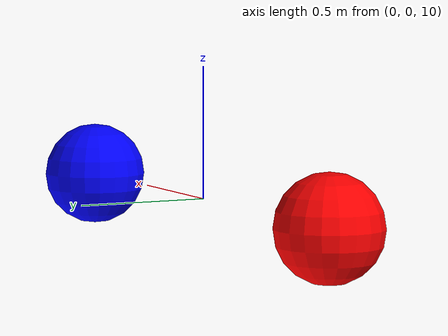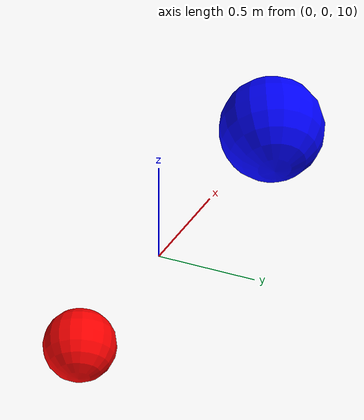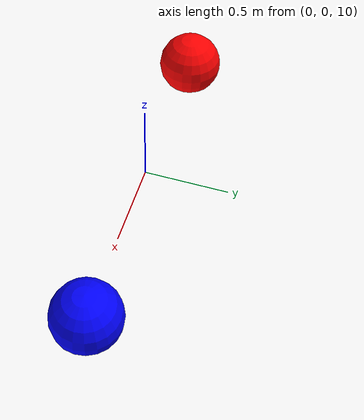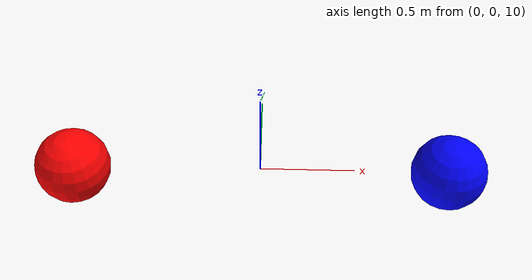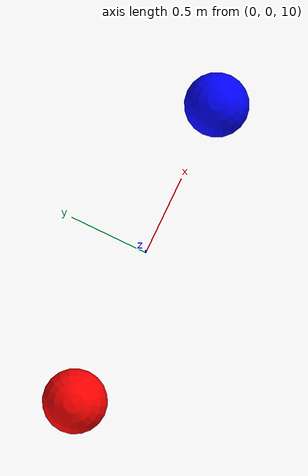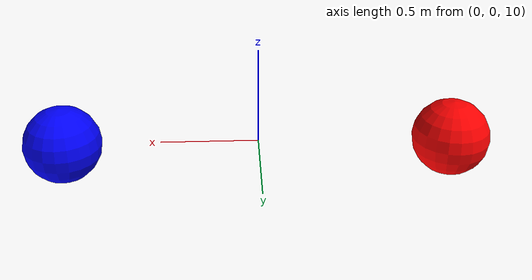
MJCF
<mujoco model="freefall">
    <!-- 시뮬레이션 옵션 설정: 지구 중력 및 계산 주기 설정 -->
    <option gravity="0 0 -9.81" timestep="0.002" />

    <worldbody>
        <!-- 바닥(평면) 정의 -->
        <geom name="floor" type="plane" size="10 10 0.1" rgba="0.8 0.9 0.8 1" />

        <!-- 조명 설정: 위치 및 방향 -->
        <light pos="0 0 10" dir="0 0 -1" />

        <!-- 탄성 높은 빨간 공 -->
        <body name="ball_elastic" pos="-1 0 10">
            <!-- 자유 관절 부여 -->
            <joint name="joint_elastic" type="free" />
            <!-- solref(time_const, dampratio): 작게 설정하여 반발력 유지 (Elastic) -->
            <geom name="geom_elastic" type="sphere" size="0.2" rgba="1 0 0 1" solref="0.02 1" />
        </body>

        <!-- 탄성 낮은 파란 공 -->
        <body name="ball_inelastic" pos="1 0 10">
            <joint name="joint_inelastic" type="free" />
            <!-- 0.1로 크게 설정하여 에너지 흡수 (Inelastic) -->
            <geom name="geom_inelastic" type="sphere" size="0.2" rgba="0 0 1 1" solref="0.1 1" />
        </body>
    </worldbody>
</mujoco>
